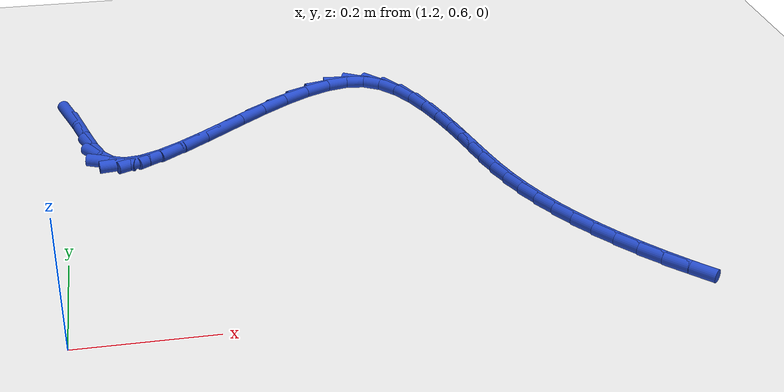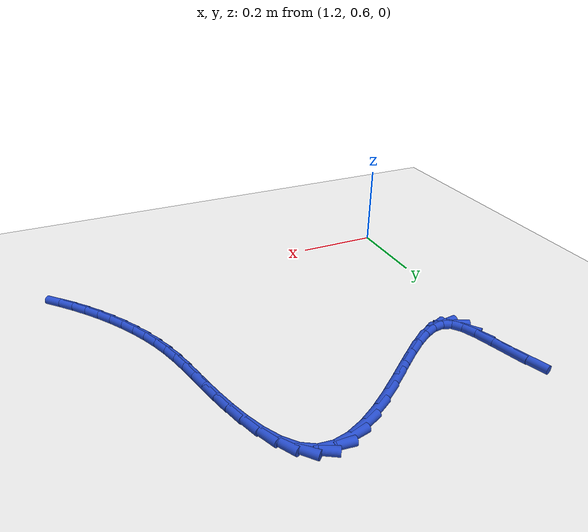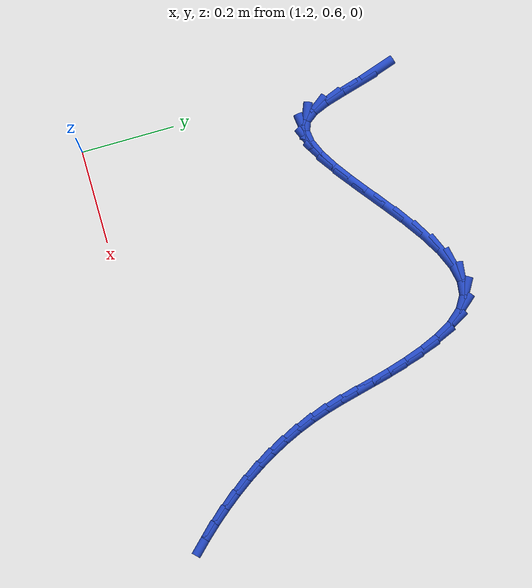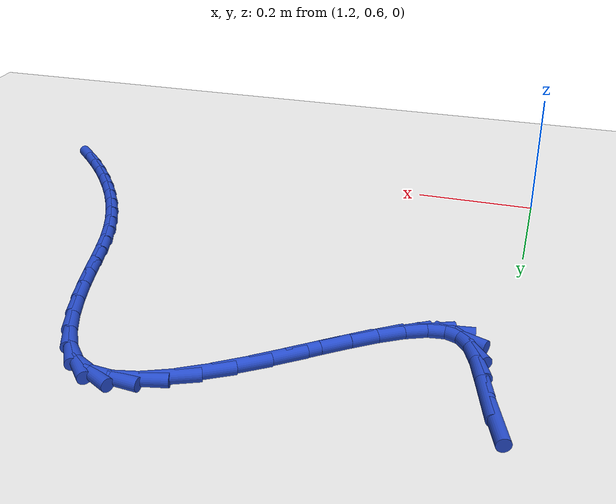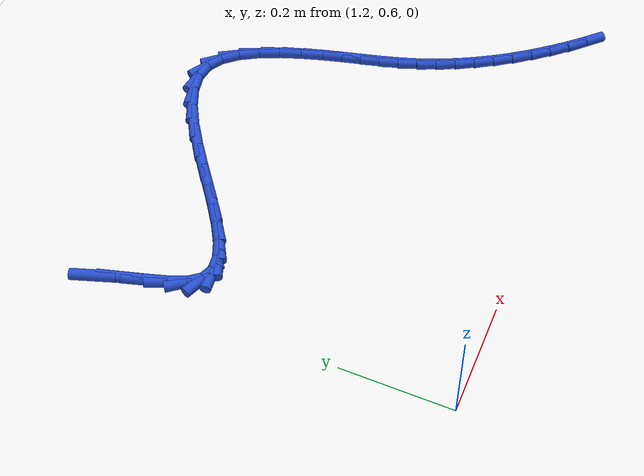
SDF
<sdf version="1.6">
 <world name="default">
  <model name="ground_plane">
   <static>1</static>
   <link name="link">
    <collision name="collision">
     <geometry><plane><normal>0 0 1</normal><size>100 100</size></plane></geometry>
     <surface><friction><ode><mu>100</mu><mu2>50</mu2></ode></friction></surface>
    </collision>
    <visual name="visual">
     <cast_shadows>0</cast_shadows>
     <geometry><plane><normal>0 0 1</normal><size>100 100</size></plane></geometry>
     <material>
      <script><uri>file://media/materials/scripts/gazebo.material</uri><name>Gazebo/WhiteGlow</name></script>
     </material>
    </visual>
   </link>
  </model>
  <model name="line">
   <link name="link_56">
    <pose>1.2009146612763038 1.2480222686581979 0.01 0 1.57 -1.252991450579234</pose>
    <collision name="collision">
     <geometry><cylinder><radius>0.01</radius><length>0.08</length></cylinder></geometry>
    </collision>
    <visual name="visual">
     <material>
      <script><name>Gazebo/Blue</name><uri>file://media/materials/scripts/gazebo.material</uri></script>
     </material>
     <geometry><cylinder><radius>0.01</radius><length>0.08</length></cylinder></geometry>
    </visual>
   </link>
   <link name="link_57">
    <pose>1.2150816394234953 1.2049556519144258 0.01 0 1.57 -1.3006480331451695</pose>
    <collision name="collision">
     <geometry><cylinder><radius>0.01</radius><length>0.08</length></cylinder></geometry>
    </collision>
    <visual name="visual">
     <material>
      <script><name>Gazebo/Blue</name><uri>file://media/materials/scripts/gazebo.material</uri></script>
     </material>
     <geometry><cylinder><radius>0.01</radius><length>0.08</length></cylinder></geometry>
    </visual>
   </link>
   <link name="link_58">
    <pose>1.2266736784243792 1.1630947125842663 0.01 0 1.57 -1.2874408476939674</pose>
    <collision name="collision">
     <geometry><cylinder><radius>0.01</radius><length>0.08</length></cylinder></geometry>
    </collision>
    <visual name="visual">
     <material>
      <script><name>Gazebo/Blue</name><uri>file://media/materials/scripts/gazebo.material</uri></script>
     </material>
     <geometry><cylinder><radius>0.01</radius><length>0.08</length></cylinder></geometry>
    </visual>
   </link>
   <link name="link_59">
    <pose>1.237659008420932 1.1253691710384963 0.01 0 1.57 -1.1879673774545032</pose>
    <collision name="collision">
     <geometry><cylinder><radius>0.01</radius><length>0.08</length></cylinder></geometry>
    </collision>
    <visual name="visual">
     <material>
      <script><name>Gazebo/Blue</name><uri>file://media/materials/scripts/gazebo.material</uri></script>
     </material>
     <geometry><cylinder><radius>0.01</radius><length>0.08</length></cylinder></geometry>
    </visual>
   </link>
   <link name="link_60">
    <pose>1.250005859555129 1.0947087476478963 0.01 0 1.57 -0.921823429640669</pose>
    <collision name="collision">
     <geometry><cylinder><radius>0.01</radius><length>0.08</length></cylinder></geometry>
    </collision>
    <visual name="visual">
     <material>
      <script><name>Gazebo/Blue</name><uri>file://media/materials/scripts/gazebo.material</uri></script>
     </material>
     <geometry><cylinder><radius>0.01</radius><length>0.08</length></cylinder></geometry>
    </visual>
   </link>
   <link name="link_61">
    <pose>1.2656824619689453 1.0740431627832419 0.01 0 1.57 -0.37753790260301073</pose>
    <collision name="collision">
     <geometry><cylinder><radius>0.01</radius><length>0.08</length></cylinder></geometry>
    </collision>
    <visual name="visual">
     <material>
      <script><name>Gazebo/Blue</name><uri>file://media/materials/scripts/gazebo.material</uri></script>
     </material>
     <geometry><cylinder><radius>0.01</radius><length>0.08</length></cylinder></geometry>
    </visual>
   </link>
   <link name="link_62">
    <pose>1.2863987260655592 1.0658279077658221 0.01 0 1.57 0.13519026092823513</pose>
    <collision name="collision">
     <geometry><cylinder><radius>0.01</radius><length>0.08</length></cylinder></geometry>
    </collision>
    <visual name="visual">
     <material>
      <script><name>Gazebo/Blue</name><uri>file://media/materials/scripts/gazebo.material</uri></script>
     </material>
     <geometry><cylinder><radius>0.01</radius><length>0.08</length></cylinder></geometry>
    </visual>
   </link>
   <link name="link_63">
    <pose>1.3121263214811052 1.069327373342965 0.01 0 1.57 0.4135358718772391</pose>
    <collision name="collision">
     <geometry><cylinder><radius>0.01</radius><length>0.08</length></cylinder></geometry>
    </collision>
    <visual name="visual">
     <material>
      <script><name>Gazebo/Blue</name><uri>file://media/materials/scripts/gazebo.material</uri></script>
     </material>
     <geometry><cylinder><radius>0.01</radius><length>0.08</length></cylinder></geometry>
    </visual>
   </link>
   <link name="link_64">
    <pose>1.3421200198013095 1.0824898530771336 0.01 0 1.57 0.55482379335384</pose>
    <collision name="collision">
     <geometry><cylinder><radius>0.01</radius><length>0.08</length></cylinder></geometry>
    </collision>
    <visual name="visual">
     <material>
      <script><name>Gazebo/Blue</name><uri>file://media/materials/scripts/gazebo.material</uri></script>
     </material>
     <geometry><cylinder><radius>0.01</radius><length>0.08</length></cylinder></geometry>
    </visual>
   </link>
   <link name="link_65">
    <pose>1.375632348659417 1.1032595210335434 0.01 0 1.57 0.6275881850826514</pose>
    <collision name="collision">
     <geometry><cylinder><radius>0.01</radius><length>0.08</length></cylinder></geometry>
    </collision>
    <visual name="visual">
     <material>
      <script><name>Gazebo/Blue</name><uri>file://media/materials/scripts/gazebo.material</uri></script>
     </material>
     <geometry><cylinder><radius>0.01</radius><length>0.08</length></cylinder></geometry>
    </visual>
   </link>
   <link name="link_66">
    <pose>1.4119158356886727 1.129580551277411 0.01 0 1.57 0.6614025121644797</pose>
    <collision name="collision">
     <geometry><cylinder><radius>0.01</radius><length>0.08</length></cylinder></geometry>
    </collision>
    <visual name="visual">
     <material>
      <script><name>Gazebo/Blue</name><uri>file://media/materials/scripts/gazebo.material</uri></script>
     </material>
     <geometry><cylinder><radius>0.01</radius><length>0.08</length></cylinder></geometry>
    </visual>
   </link>
   <link name="link_67">
    <pose>1.4502230085223218 1.1593971178739537 0.01 0 1.57 0.6683864508886445</pose>
    <collision name="collision">
     <geometry><cylinder><radius>0.01</radius><length>0.08</length></cylinder></geometry>
    </collision>
    <visual name="visual">
     <material>
      <script><name>Gazebo/Blue</name><uri>file://media/materials/scripts/gazebo.material</uri></script>
     </material>
     <geometry><cylinder><radius>0.01</radius><length>0.08</length></cylinder></geometry>
    </visual>
   </link>
   <link name="link_68">
    <pose>1.4898063947936084 1.1906533948883866 0.01 0 1.57 0.6523144195722065</pose>
    <collision name="collision">
     <geometry><cylinder><radius>0.01</radius><length>0.08</length></cylinder></geometry>
    </collision>
    <visual name="visual">
     <material>
      <script><name>Gazebo/Blue</name><uri>file://media/materials/scripts/gazebo.material</uri></script>
     </material>
     <geometry><cylinder><radius>0.01</radius><length>0.08</length></cylinder></geometry>
    </visual>
   </link>
   <link name="link_69">
    <pose>1.529918522135777 1.2212935563859262 0.01 0 1.57 0.6114463608501448</pose>
    <collision name="collision">
     <geometry><cylinder><radius>0.01</radius><length>0.08</length></cylinder></geometry>
    </collision>
    <visual name="visual">
     <material>
      <script><name>Gazebo/Blue</name><uri>file://media/materials/scripts/gazebo.material</uri></script>
     </material>
     <geometry><cylinder><radius>0.01</radius><length>0.08</length></cylinder></geometry>
    </visual>
   </link>
   <link name="link_70">
    <pose>1.5698119181820736 1.2492617764317895 0.01 0 1.57 0.5382280991515048</pose>
    <collision name="collision">
     <geometry><cylinder><radius>0.01</radius><length>0.08</length></cylinder></geometry>
    </collision>
    <visual name="visual">
     <material>
      <script><name>Gazebo/Blue</name><uri>file://media/materials/scripts/gazebo.material</uri></script>
     </material>
     <geometry><cylinder><radius>0.01</radius><length>0.08</length></cylinder></geometry>
    </visual>
   </link>
   <link name="link_71">
    <pose>1.6087391105657414 1.2725022290911916 0.01 0 1.57 0.4163719721982218</pose>
    <collision name="collision">
     <geometry><cylinder><radius>0.01</radius><length>0.08</length></cylinder></geometry>
    </collision>
    <visual name="visual">
     <material>
      <script><name>Gazebo/Blue</name><uri>file://media/materials/scripts/gazebo.material</uri></script>
     </material>
     <geometry><cylinder><radius>0.01</radius><length>0.08</length></cylinder></geometry>
    </visual>
   </link>
   <link name="link_72">
    <pose>1.6459526269200269 1.2889590884293498 0.01 0 1.57 0.21577944999510576</pose>
    <collision name="collision">
     <geometry><cylinder><radius>0.01</radius><length>0.08</length></cylinder></geometry>
    </collision>
    <visual name="visual">
     <material>
      <script><name>Gazebo/Blue</name><uri>file://media/materials/scripts/gazebo.material</uri></script>
     </material>
     <geometry><cylinder><radius>0.01</radius><length>0.08</length></cylinder></geometry>
    </visual>
   </link>
   <link name="link_73">
    <pose>1.680704994878173 1.2965765285114799 0.01 0 1.57 -0.10354138094093121</pose>
    <collision name="collision">
     <geometry><cylinder><radius>0.01</radius><length>0.08</length></cylinder></geometry>
    </collision>
    <visual name="visual">
     <material>
      <script><name>Gazebo/Blue</name><uri>file://media/materials/scripts/gazebo.material</uri></script>
     </material>
     <geometry><cylinder><radius>0.01</radius><length>0.08</length></cylinder></geometry>
    </visual>
   </link>
   <link name="link_74">
    <pose>1.7122487420734256 1.2932987234027982 0.01 0 1.57 -0.5223789625803251</pose>
    <collision name="collision">
     <geometry><cylinder><radius>0.01</radius><length>0.08</length></cylinder></geometry>
    </collision>
    <visual name="visual">
     <material>
      <script><name>Gazebo/Blue</name><uri>file://media/materials/scripts/gazebo.material</uri></script>
     </material>
     <geometry><cylinder><radius>0.01</radius><length>0.08</length></cylinder></geometry>
    </visual>
   </link>
   <link name="link_75">
    <pose>1.7398988280429615 1.2773798777785317 0.01 0 1.57 -0.8517555751140924</pose>
    <collision name="collision">
     <geometry><cylinder><radius>0.01</radius><length>0.08</length></cylinder></geometry>
    </collision>
    <visual name="visual">
     <material>
      <script><name>Gazebo/Blue</name><uri>file://media/materials/scripts/gazebo.material</uri></script>
     </material>
     <geometry><cylinder><radius>0.01</radius><length>0.08</length></cylinder></geometry>
    </visual>
   </link>
   <link name="link_76">
    <pose>1.763616810232701 1.2502851370581858 0.01 0 1.57 -1.047701369174803</pose>
    <collision name="collision">
     <geometry><cylinder><radius>0.01</radius><length>0.08</length></cylinder></geometry>
    </collision>
    <visual name="visual">
     <material>
      <script><name>Gazebo/Blue</name><uri>file://media/materials/scripts/gazebo.material</uri></script>
     </material>
     <geometry><cylinder><radius>0.01</radius><length>0.08</length></cylinder></geometry>
    </visual>
   </link>
   <link name="link_77">
    <pose>1.7837466504388926 1.215378628536477 0.01 0 1.57 -1.1651492482187171</pose>
    <collision name="collision">
     <geometry><cylinder><radius>0.01</radius><length>0.08</length></cylinder></geometry>
    </collision>
    <visual name="visual">
     <material>
      <script><name>Gazebo/Blue</name><uri>file://media/materials/scripts/gazebo.material</uri></script>
     </material>
     <geometry><cylinder><radius>0.01</radius><length>0.08</length></cylinder></geometry>
    </visual>
   </link>
   <link name="link_78">
    <pose>1.800637289773891 1.1760492062954426 0.01 0 1.57 -1.2369822908693664</pose>
    <collision name="collision">
     <geometry><cylinder><radius>0.01</radius><length>0.08</length></cylinder></geometry>
    </collision>
    <visual name="visual">
     <material>
      <script><name>Gazebo/Blue</name><uri>file://media/materials/scripts/gazebo.material</uri></script>
     </material>
     <geometry><cylinder><radius>0.01</radius><length>0.08</length></cylinder></geometry>
    </visual>
   </link>
   <link name="link_79">
    <pose>1.8146391057379005 1.135673946725689 0.01 0 1.57 -1.2830249694377305</pose>
    <collision name="collision">
     <geometry><cylinder><radius>0.01</radius><length>0.08</length></cylinder></geometry>
    </collision>
    <visual name="visual">
     <material>
      <script><name>Gazebo/Blue</name><uri>file://media/materials/scripts/gazebo.material</uri></script>
     </material>
     <geometry><cylinder><radius>0.01</radius><length>0.08</length></cylinder></geometry>
    </visual>
   </link>
   <link name="link_80">
    <pose>1.8262446132177588 1.09646446782016 0.01 0 1.57 -1.3141957135051476</pose>
    <collision name="collision">
     <geometry><cylinder><radius>0.01</radius><length>0.08</length></cylinder></geometry>
    </collision>
    <visual name="visual">
     <material>
      <script><name>Gazebo/Blue</name><uri>file://media/materials/scripts/gazebo.material</uri></script>
     </material>
     <geometry><cylinder><radius>0.01</radius><length>0.08</length></cylinder></geometry>
    </visual>
   </link>
   <link name="link_81">
    <pose>1.8362068017970958 1.0584966199884336 0.01 0 1.57 -1.3288820800078622</pose>
    <collision name="collision">
     <geometry><cylinder><radius>0.01</radius><length>0.08</length></cylinder></geometry>
    </collision>
    <visual name="visual">
     <material>
      <script><name>Gazebo/Blue</name><uri>file://media/materials/scripts/gazebo.material</uri></script>
     </material>
     <geometry><cylinder><radius>0.01</radius><length>0.08</length></cylinder></geometry>
    </visual>
   </link>
   <link name="link_82">
    <pose>1.8453065227550856 1.021617801099798 0.01 0 1.57 -1.3249666371870024</pose>
    <collision name="collision">
     <geometry><cylinder><radius>0.01</radius><length>0.08</length></cylinder></geometry>
    </collision>
    <visual name="visual">
     <material>
      <script><name>Gazebo/Blue</name><uri>file://media/materials/scripts/gazebo.material</uri></script>
     </material>
     <geometry><cylinder><radius>0.01</radius><length>0.08</length></cylinder></geometry>
    </visual>
   </link>
   <link name="link_83">
    <pose>1.854324627370905 0.9856754090235409 0.01 0 1.57 -1.3011419209189108</pose>
    <collision name="collision">
     <geometry><cylinder><radius>0.01</radius><length>0.08</length></cylinder></geometry>
    </collision>
    <visual name="visual">
     <material>
      <script><name>Gazebo/Blue</name><uri>file://media/materials/scripts/gazebo.material</uri></script>
     </material>
     <geometry><cylinder><radius>0.01</radius><length>0.08</length></cylinder></geometry>
    </visual>
   </link>
   <link name="link_84">
    <pose>1.864041966923729 0.9505168416289516 0.01 0 1.57 -1.2572409322914309</pose>
    <collision name="collision">
     <geometry><cylinder><radius>0.01</radius><length>0.08</length></cylinder></geometry>
    </collision>
    <visual name="visual">
     <material>
      <script><name>Gazebo/Blue</name><uri>file://media/materials/scripts/gazebo.material</uri></script>
     </material>
     <geometry><cylinder><radius>0.01</radius><length>0.08</length></cylinder></geometry>
    </visual>
   </link>
   <link name="link_85">
    <pose>1.8752374037061406 0.915989900417781 0.01 0 1.57 -1.2007810175958835</pose>
    <collision name="collision">
     <geometry><cylinder><radius>0.01</radius><length>0.08</length></cylinder></geometry>
    </collision>
    <visual name="visual">
     <material>
      <script><name>Gazebo/Blue</name><uri>file://media/materials/scripts/gazebo.material</uri></script>
     </material>
     <geometry><cylinder><radius>0.01</radius><length>0.08</length></cylinder></geometry>
    </visual>
   </link>
   <link name="link_86">
    <pose>1.8884227597774208 0.8819965783619493 0.01 0 1.57 -1.1454246966005144</pose>
    <collision name="collision">
     <geometry><cylinder><radius>0.01</radius><length>0.08</length></cylinder></geometry>
    </collision>
    <visual name="visual">
     <material>
      <script><name>Gazebo/Blue</name><uri>file://media/materials/scripts/gazebo.material</uri></script>
     </material>
     <geometry><cylinder><radius>0.01</radius><length>0.08</length></cylinder></geometry>
    </visual>
   </link>
   <link name="link_87">
    <pose>1.9035763982911384 0.8485471252380378 0.01 0 1.57 -1.0927626122115963</pose>
    <collision name="collision">
     <geometry><cylinder><radius>0.01</radius><length>0.08</length></cylinder></geometry>
    </collision>
    <visual name="visual">
     <material>
      <script><name>Gazebo/Blue</name><uri>file://media/materials/scripts/gazebo.material</uri></script>
     </material>
     <geometry><cylinder><radius>0.01</radius><length>0.08</length></cylinder></geometry>
    </visual>
   </link>
   <link name="link_88">
    <pose>1.9206132700866099 0.8156646593199829 0.01 0 1.57 -1.042771655752403</pose>
    <collision name="collision">
     <geometry><cylinder><radius>0.01</radius><length>0.08</length></cylinder></geometry>
    </collision>
    <visual name="visual">
     <material>
      <script><name>Gazebo/Blue</name><uri>file://media/materials/scripts/gazebo.material</uri></script>
     </material>
     <geometry><cylinder><radius>0.01</radius><length>0.08</length></cylinder></geometry>
    </visual>
   </link>
   <link name="link_89">
    <pose>1.9394483260031499 0.7833722988817231 0.01 0 1.57 -0.9953814151247429</pose>
    <collision name="collision">
     <geometry><cylinder><radius>0.01</radius><length>0.08</length></cylinder></geometry>
    </collision>
    <visual name="visual">
     <material>
      <script><name>Gazebo/Blue</name><uri>file://media/materials/scripts/gazebo.material</uri></script>
     </material>
     <geometry><cylinder><radius>0.01</radius><length>0.08</length></cylinder></geometry>
    </visual>
   </link>
   <link name="link_90">
    <pose>1.9599965168800741 0.7516931621971941 0.01 0 1.57 -0.9504860101871244</pose>
    <collision name="collision">
     <geometry><cylinder><radius>0.01</radius><length>0.08</length></cylinder></geometry>
    </collision>
    <visual name="visual">
     <material>
      <script><name>Gazebo/Blue</name><uri>file://media/materials/scripts/gazebo.material</uri></script>
     </material>
     <geometry><cylinder><radius>0.01</radius><length>0.08</length></cylinder></geometry>
    </visual>
   </link>
   <link name="link_91">
    <pose>1.982172793556698 0.7206503675403338 0.01 0 1.57 -0.9079545114887406</pose>
    <collision name="collision">
     <geometry><cylinder><radius>0.01</radius><length>0.08</length></cylinder></geometry>
    </collision>
    <visual name="visual">
     <material>
      <script><name>Gazebo/Blue</name><uri>file://media/materials/scripts/gazebo.material</uri></script>
     </material>
     <geometry><cylinder><radius>0.01</radius><length>0.08</length></cylinder></geometry>
    </visual>
   </link>
   <link name="link_92">
    <pose>2.005892106872338 0.6902670331850789 0.01 0 1.57 -0.8676396328762491</pose>
    <collision name="collision">
     <geometry><cylinder><radius>0.01</radius><length>0.08</length></cylinder></geometry>
    </collision>
    <visual name="visual">
     <material>
      <script><name>Gazebo/Blue</name><uri>file://media/materials/scripts/gazebo.material</uri></script>
     </material>
     <geometry><cylinder><radius>0.01</radius><length>0.08</length></cylinder></geometry>
    </visual>
   </link>
   <link name="link_93">
    <pose>2.0310694076663083 0.6605662774053669 0.01 0 1.57 -0.8293846563340639</pose>
    <collision name="collision">
     <geometry><cylinder><radius>0.01</radius><length>0.08</length></cylinder></geometry>
    </collision>
    <visual name="visual">
     <material>
      <script><name>Gazebo/Blue</name><uri>file://media/materials/scripts/gazebo.material</uri></script>
     </material>
     <geometry><cylinder><radius>0.01</radius><length>0.08</length></cylinder></geometry>
    </visual>
   </link>
   <link name="link_94">
    <pose>2.0576196467779253 0.6315712184751343 0.01 0 1.57 -0.7930287136258352</pose>
    <collision name="collision">
     <geometry><cylinder><radius>0.01</radius><length>0.08</length></cylinder></geometry>
    </collision>
    <visual name="visual">
     <material>
      <script><name>Gazebo/Blue</name><uri>file://media/materials/scripts/gazebo.material</uri></script>
     </material>
     <geometry><cylinder><radius>0.01</radius><length>0.08</length></cylinder></geometry>
    </visual>
   </link>
  </model>
 </world>
</sdf>
